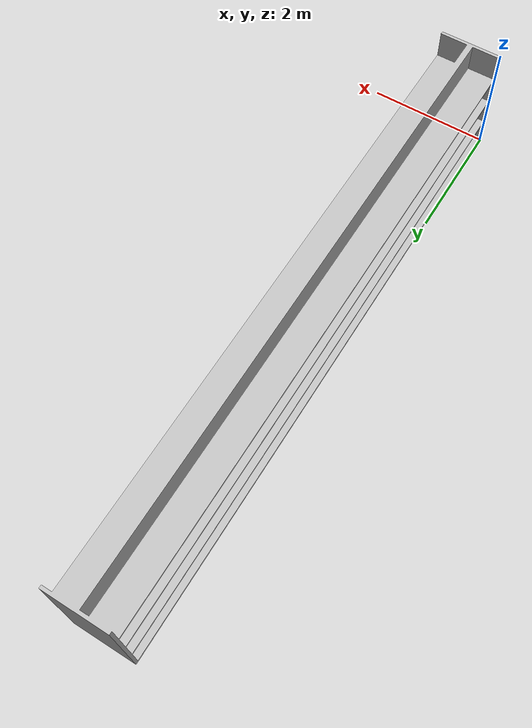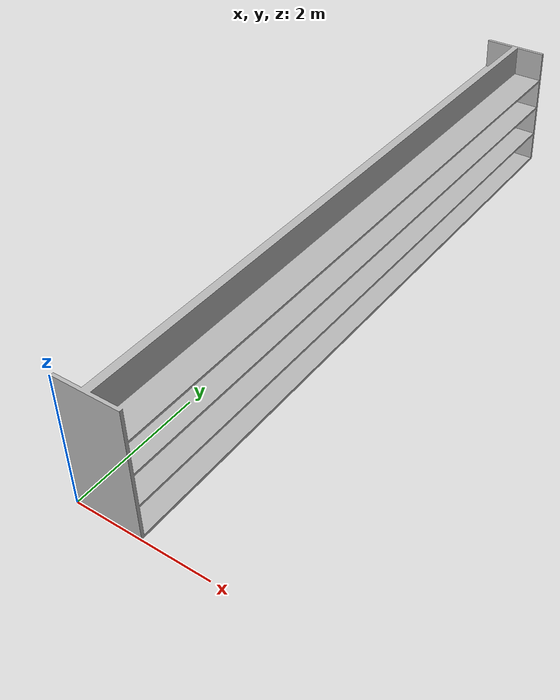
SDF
<?xml version="1.0" ?>
<sdf version="1.5">
  <model name="shelf_new">
    <static>true</static>
    <link name="link">
    <collision name="collision">
	<pose>0.5 5 1 0 0 0</pose>
     <geometry>
          <box>
            <size>1 10 2</size>
          </box>
        </geometry>
      </collision>

      <visual name="visual">
        <geometry>
          <mesh>
            <uri>model://shelf/meshes/shelf_new.dae</uri>
          </mesh>
        </geometry>
      </visual>

    </link>
  </model>

</sdf>
